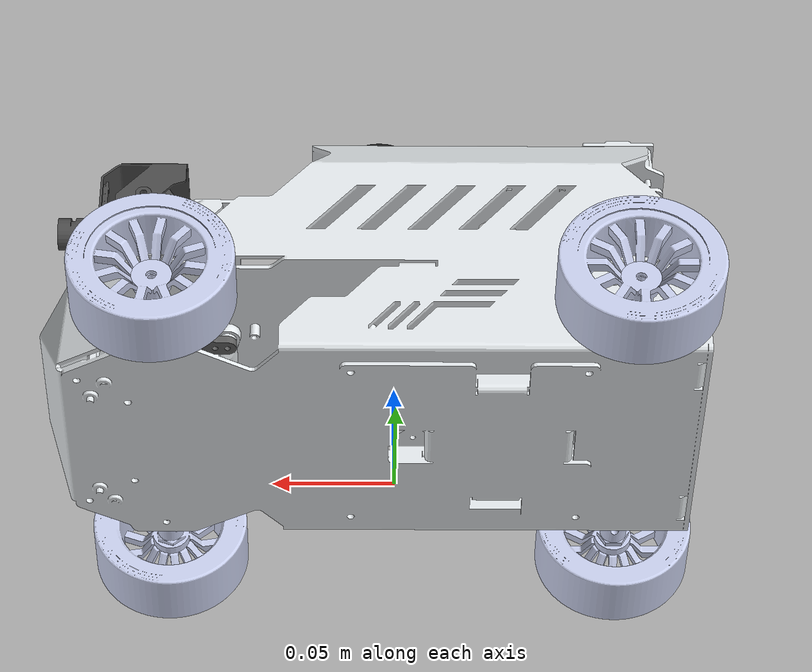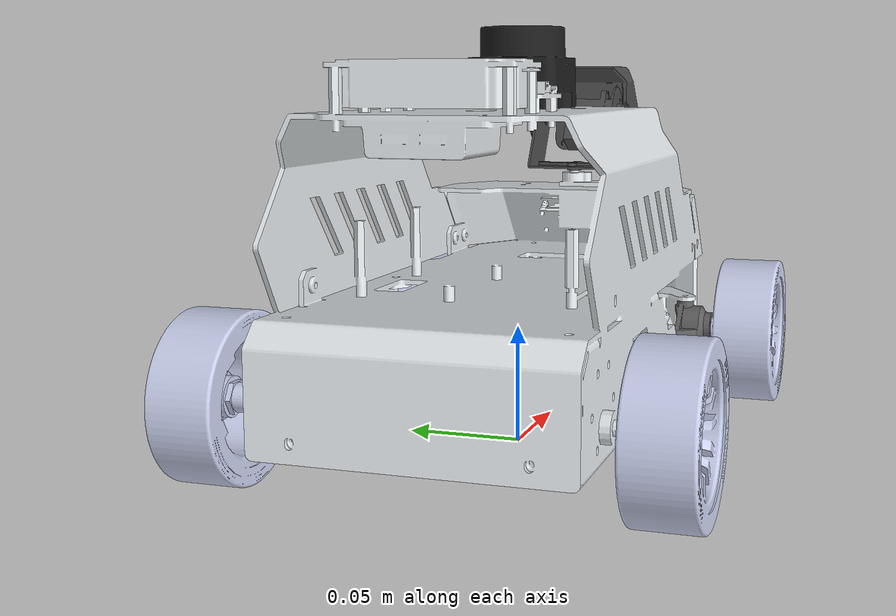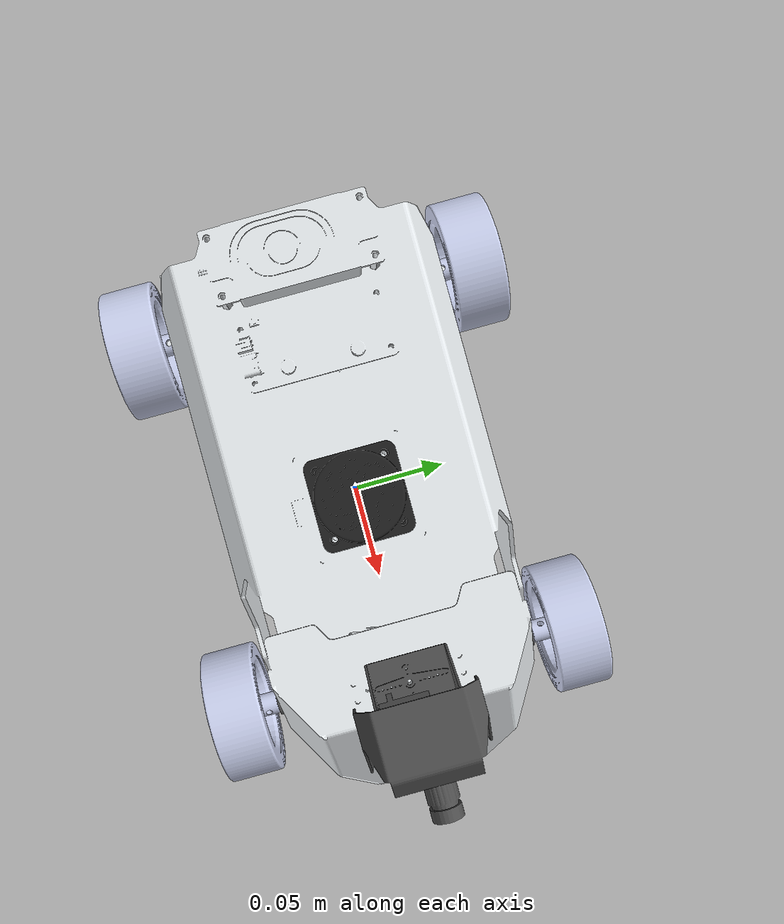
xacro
<?xml version="1.0" encoding="utf-8"?>
<robot name="yahboomcar_A1" xmlns:xacro="http://ros.org/wiki/xacro">
  <link name="robot1/imu_link"/>
  <link
    name="robot1/base_link">
    <inertial>
      <origin
        xyz="-0.0160219251591395 -3.55035646915717E-05 0.0443188739852392"
        rpy="0 0 0" />
      <mass
        value="1.07256113901465" />
      <inertia
        ixx="0.00172072379660189"
        ixy="-2.35223127379625E-07"
        ixz="8.37341316711092E-05"
        iyy="0.00329379390970044"
        iyz="-2.59982782717492E-07"
        izz="0.00445325810861736" />
    </inertial>
    <visual>
      <origin
        xyz="0 0 0"
        rpy="0 0 0" />
      <geometry>
        <mesh
          filename="package://yahboomcar_description/meshes/A1USBAckermann/base_link.STL" />
      </geometry>
      <material
        name="">
        <color
          rgba="0.898039215686275 0.917647058823529 0.929411764705882 1" />
      </material>
    </visual>
    <collision>
      <origin
        xyz="0 0 0"
        rpy="0 0 0" />
      <geometry>
        <mesh
          filename="package://yahboomcar_description/meshes/A1USBAckermann/base_link.STL" />
      </geometry>
    </collision>
  </link>
  <link
    name="robot1/left_steering_hinge_joint">
    <inertial>
      <origin
        xyz="-0.00432772107986408 0.00342831189726796 -0.000372306089408943"
        rpy="0 0 0" />
      <mass
        value="0.00410072639970501" />
      <inertia
        ixx="2.31077741860635E-07"
        ixy="-1.07215901497977E-07"
        ixz="-1.88915741168269E-08"
        iyy="4.30040568759882E-07"
        iyz="-7.54747758276883E-09"
        izz="4.26845883673014E-07" />
    </inertial>
    <visual>
      <origin
        xyz="0 0 0"
        rpy="0 0 0" />
      <geometry>
        <mesh
          filename="package://yahboomcar_description/meshes/A1USBAckermann/left_steering_hinge_joint.STL" />
      </geometry>
      <material
        name="">
        <color
          rgba="0.372549019607843 0.372549019607843 0.372549019607843 1" />
      </material>
    </visual>
    <collision>
      <origin
        xyz="0 0 0"
        rpy="0 0 0" />
      <geometry>
        <mesh
          filename="package://yahboomcar_description/meshes/A1USBAckermann/left_steering_hinge_joint.STL" />
      </geometry>
    </collision>
  </link>
  <joint
    name="robot1/left_steering_hinge_joint"
    type="revolute">
    <origin
      xyz="0.097 0.055 0.0146"
      rpy="0 0 0" />
    <parent
      link="robot1/base_link" />
    <child
      link="robot1/left_steering_hinge_joint" />
    <axis
      xyz="0 0 -1" />
    <limit
      lower="-0.5236"
      upper="0.5236"
      effort="0"
      velocity="1" />
  </joint>
  <link
    name="robot1/left_front_wheel_joint">
    <inertial>
      <origin
        xyz="-3.41254080549191E-10 4.25527049982555E-06 -1.57588005145204E-11"
        rpy="0 0 0" />
      <mass
        value="0.0556804524709551" />
      <inertia
        ixx="2.42162819571084E-05"
        ixy="-8.02192454916149E-14"
        ixz="5.34047350088356E-09"
        iyy="4.23054199692737E-05"
        iyz="-1.54995540465628E-15"
        izz="2.42295994140218E-05" />
    </inertial>
    <visual>
      <origin
        xyz="0 0 0"
        rpy="0 0 0" />
      <geometry>
        <mesh
          filename="package://yahboomcar_description/meshes/A1USBAckermann/left_front_wheel_joint.STL" />
      </geometry>
      <material
        name="">
        <color
          rgba="0.792156862745098 0.819607843137255 0.933333333333333 1" />
      </material>
    </visual>
    <collision>
      <origin
        xyz="0 0 0"
        rpy="0 0 0" />
      <geometry>
        <mesh
          filename="package://yahboomcar_description/meshes/A1USBAckermann/left_front_wheel_joint.STL" />
      </geometry>
    </collision>
  </link>
  <joint
    name="robot1/left_front_wheel_joint"
    type="continuous">
    <origin
      xyz="0 0.03185 0"
      rpy="0 0 0" />
    <parent
      link="robot1/left_steering_hinge_joint" />
    <child
      link="robot1/left_front_wheel_joint" />
    <axis
      xyz="0 1 0" />
    <limit
      effort="0"
      velocity="1" />
  </joint>
  <link
    name="robot1/right_steering_hinge_joint">
    <inertial>
      <origin
        xyz="-0.00432774166471593 -0.00342817202688872 -0.0003723602996958"
        rpy="0 0 0" />
      <mass
        value="0.00410082931421253" />
      <inertia
        ixx="2.31084068665315E-07"
        ixy="1.07219390383862E-07"
        ixz="-1.88905122267278E-08"
        iyy="4.30053430137022E-07"
        iyz="7.54921132373203E-09"
        izz="4.26857565562271E-07" />
    </inertial>
    <visual>
      <origin
        xyz="0 0 0"
        rpy="0 0 0" />
      <geometry>
        <mesh
          filename="package://yahboomcar_description/meshes/A1USBAckermann/right_steering_hinge_joint.STL" />
      </geometry>
      <material
        name="">
        <color
          rgba="0.372549019607843 0.372549019607843 0.372549019607843 1" />
      </material>
    </visual>
    <collision>
      <origin
        xyz="0 0 0"
        rpy="0 0 0" />
      <geometry>
        <mesh
          filename="package://yahboomcar_description/meshes/A1USBAckermann/right_steering_hinge_joint.STL" />
      </geometry>
    </collision>
  </link>
  <joint
    name="robot1/right_steering_hinge_joint"
    type="revolute">
    <origin
      xyz="0.097 -0.055 0.0146"
      rpy="0 0 0" />
    <parent
      link="robot1/base_link" />
    <child
      link="robot1/right_steering_hinge_joint" />
    <axis
      xyz="0 0 -1" />
    <limit
      lower="-0.5236"
      upper="0.5236"
      effort="0"
      velocity="1" />
  </joint>
  <link
    name="robot1/right_front_wheel_joint">
    <inertial>
      <origin
        xyz="3.41016742622102E-10 -4.25527049983943E-06 -2.02548030431293E-11"
        rpy="0 0 0" />
      <mass
        value="0.0556804524709551" />
      <inertia
        ixx="2.42213371350958E-05"
        ixy="-8.01918652649274E-14"
        ixz="9.10069427989303E-09"
        iyy="4.23054199692738E-05"
        iyz="2.60702436477586E-15"
        izz="2.42245442360345E-05" />
    </inertial>
    <visual>
      <origin
        xyz="0 0 0"
        rpy="0 0 0" />
      <geometry>
        <mesh
          filename="package://yahboomcar_description/meshes/A1USBAckermann/right_front_wheel_joint.STL" />
      </geometry>
      <material
        name="">
        <color
          rgba="0.792156862745098 0.819607843137255 0.933333333333333 1" />
      </material>
    </visual>
    <collision>
      <origin
        xyz="0 0 0"
        rpy="0 0 0" />
      <geometry>
        <mesh
          filename="package://yahboomcar_description/meshes/A1USBAckermann/right_front_wheel_joint.STL" />
      </geometry>
    </collision>
  </link>
  <joint
    name="robot1/right_front_wheel_joint"
    type="continuous">
    <origin
      xyz="0 -0.03185 0"
      rpy="0 0 0" />
    <parent
      link="robot1/right_steering_hinge_joint" />
    <child
      link="robot1/right_front_wheel_joint" />
    <axis
      xyz="0 -1 0" />
    <limit
      effort="0"
      velocity="1" />
  </joint>
  <link
    name="robot1/left_rear_wheel_hinge">
    <inertial>
      <origin
        xyz="-4.4187181691413E-11 5.72846855563941E-05 8.15078352034426E-11"
        rpy="0 0 0" />
      <mass
        value="0.0554418184842637" />
      <inertia
        ixx="2.42193835816297E-05"
        ixy="-9.72977227662279E-15"
        ixz="-7.58986126895097E-09"
        iyy="4.23036027754325E-05"
        iyz="1.38356120018902E-14"
        izz="2.42115715562562E-05" />
    </inertial>
    <visual>
      <origin
        xyz="0 0 0"
        rpy="0 0 0" />
      <geometry>
        <mesh
          filename="package://yahboomcar_description/meshes/A1USBAckermann/left_rear_wheel_hinge.STL" />
      </geometry>
      <material
        name="">
        <color
          rgba="0.792156862745098 0.819607843137255 0.933333333333333 1" />
      </material>
    </visual>
    <collision>
      <origin
        xyz="0 0 0"
        rpy="0 0 0" />
      <geometry>
        <mesh
          filename="package://yahboomcar_description/meshes/A1USBAckermann/left_rear_wheel_hinge.STL" />
      </geometry>
    </collision>
  </link>
  <joint
    name="robot1/left_rear_wheel_hinge"
    type="continuous">
    <origin
      xyz="-0.097 0.08685 0.0145"
      rpy="0 0 0" />
    <parent
      link="robot1/base_link" />
    <child
      link="robot1/left_rear_wheel_hinge" />
    <axis
      xyz="0 1 0" />
  </joint>
  <link
    name="robot1/right_rear_wheel_hinge">
    <inertial>
      <origin
        xyz="-4.41872094469886E-11 -5.7284685556408E-05 -8.15078352034426E-11"
        rpy="0 0 0" />
      <mass
        value="0.0554418184842638" />
      <inertia
        ixx="2.42062373800672E-05"
        ixy="9.72976953991212E-15"
        ixz="-1.01741973926838E-13"
        iyy="4.23036027754325E-05"
        iyz="1.38356144387176E-14"
        izz="2.42247177578187E-05" />
    </inertial>
    <visual>
      <origin
        xyz="0 0 0"
        rpy="0 0 0" />
      <geometry>
        <mesh
          filename="package://yahboomcar_description/meshes/A1USBAckermann/right_rear_wheel_hinge.STL" />
      </geometry>
      <material
        name="">
        <color
          rgba="0.792156862745098 0.819607843137255 0.933333333333333 1" />
      </material>
    </visual>
    <collision>
      <origin
        xyz="0 0 0"
        rpy="0 0 0" />
      <geometry>
        <mesh
          filename="package://yahboomcar_description/meshes/A1USBAckermann/right_rear_wheel_hinge.STL" />
      </geometry>
    </collision>
  </link>
  <joint
    name="robot1/right_rear_wheel_hinge"
    type="continuous">
    <origin
      xyz="-0.097 -0.08685 0.0145"
      rpy="0 0 0" />
    <parent
      link="robot1/base_link" />
    <child
      link="robot1/right_rear_wheel_hinge" />
    <axis
      xyz="0 -1 0" />
  </joint>
  <link
    name="robot1/laser">
    <inertial>
      <origin
        xyz="8.01192970788925E-05 -0.000142837223458577 -0.0125536403657814"
        rpy="0 0 0" />
      <mass
        value="0.00992629938318763" />
      <inertia
        ixx="1.91413177271348E-06"
        ixy="-2.34516063221005E-08"
        ixz="3.84281721110045E-09"
        iyy="1.8985026286829E-06"
        iyz="-1.82879279848488E-09"
        izz="3.33334865875319E-06" />
    </inertial>
    <visual>
      <origin
        xyz="0 0 0"
        rpy="0 0 0" />
      <geometry>
        <mesh
          filename="package://yahboomcar_description/meshes/A1USBAckermann/laser_joint.STL" />
      </geometry>
      <material
        name="">
        <color
          rgba="0.113725490196078 0.113725490196078 0.113725490196078 1" />
      </material>
    </visual>
    <collision>
      <origin
        xyz="0 0 0"
        rpy="0 0 0" />
      <geometry>
        <mesh
          filename="package://yahboomcar_description/meshes/A1USBAckermann/laser_joint.STL" />
      </geometry>
    </collision>
  </link>
  <joint
    name="robot1/laser"
    type="fixed">
    <origin
      xyz="0.0060585 0 0.14912"
      rpy="3.1415 3.1415 0" />
    <parent
      link="robot1/base_link" />
    <child
      link="robot1/laser" />
    <axis
      xyz="0 0 0" />
  </joint>
  <link
    name="robot1/camera_link">
    <inertial>
      <origin
        xyz="0.0119555652128102 -0.00278949741223551 0.0182504648978518"
        rpy="0 0 0" />
      <mass
        value="0.0101698310349898" />
      <inertia
        ixx="1.63281881756608E-06"
        ixy="-1.44952065784131E-09"
        ixz="-2.68839729159241E-07"
        iyy="9.61381789713651E-07"
        iyz="8.7282110277677E-09"
        izz="1.37579718891045E-06" />
    </inertial>
    <visual>
      <origin
        xyz="0 0 0"
        rpy="0 0 0" />
      <geometry>
        <mesh
          filename="package://yahboomcar_description/meshes/A1USBAckermann/camera_joint.STL" />
      </geometry>
      <material
        name="">
        <color
          rgba="0.298039215686275 0.298039215686275 0.298039215686275 1" />
      </material>
    </visual>
    <collision>
      <origin
        xyz="0 0 0"
        rpy="0 0 0" />
      <geometry>
        <mesh
          filename="package://yahboomcar_description/meshes/A1USBAckermann/camera_joint.STL" />
      </geometry>
    </collision>
  </link>
  <joint
    name="robot1/camera_link"
    type="revolute">
    <origin
      xyz="0.091521 0.0001 0.091136"
      rpy="0 0 0" />
    <parent
      link="robot1/base_link" />
    <child
      link="robot1/camera_link" />
    <axis
      xyz="0 0 -1" />
    <limit
      lower="-1.5708"
      upper="1.5708"
      effort="0"
      velocity="0" />
  </joint>
  <link
    name="robot1/camera2_link">
    <inertial>
      <origin
        xyz="0.000155461697677956 0.00474162151415922 0.0151098565824489"
        rpy="0 0 0" />
      <mass
        value="0.00926963873395908" />
      <inertia
        ixx="1.66433730312951E-06"
        ixy="-3.29093619597752E-10"
        ixz="-4.17461760561084E-09"
        iyy="2.26058889309778E-06"
        iyz="2.79109955725232E-07"
        izz="2.31083206092727E-06" />
    </inertial>
    <visual>
      <origin
        xyz="0 0 0"
        rpy="0 0 0" />
      <geometry>
        <mesh
          filename="package://yahboomcar_description/meshes/A1USBAckermann/camera2_joint.STL" />
      </geometry>
      <material
        name="">
        <color
          rgba="0.298039215686275 0.298039215686275 0.298039215686275 1" />
      </material>
    </visual>
    <collision>
      <origin
        xyz="0 0 0"
        rpy="0 0 0" />
      <geometry>
        <mesh
          filename="package://yahboomcar_description/meshes/A1USBAckermann/camera2_joint.STL" />
      </geometry>
    </collision>
  </link>
  <joint
    name="robot1/camera2_link"
    type="revolute">
    <origin
      xyz="0.016875 0 0.025108"
      rpy="1.5708 0 1.5708" />
    <parent
      link="robot1/camera_link" />
    <child
      link="robot1/camera2_link" />
    <axis
      xyz="1 0 0" />
    <limit
      lower="-1.5708"
      upper="1.5708"
      effort="0"
      velocity="0" />
  </joint>
  <joint name="robot1/base_imu" type="fixed">
  <parent link="robot1/base_link"/>
  <child link="robot1/imu_link"/>
  <origin xyz="-0.025 -0.034 0.038" rpy="0 0 0"/>
  </joint>

  <link name="robot1/base_footprint"/>
  <joint name="robot1/base_joint" type="fixed">
    <parent link="robot1/base_footprint"/>
    <child link="robot1/base_link"/>
    <origin xyz="0.0 0.0 0.0215" rpy="0 0 0"/>
  </joint>
</robot>
